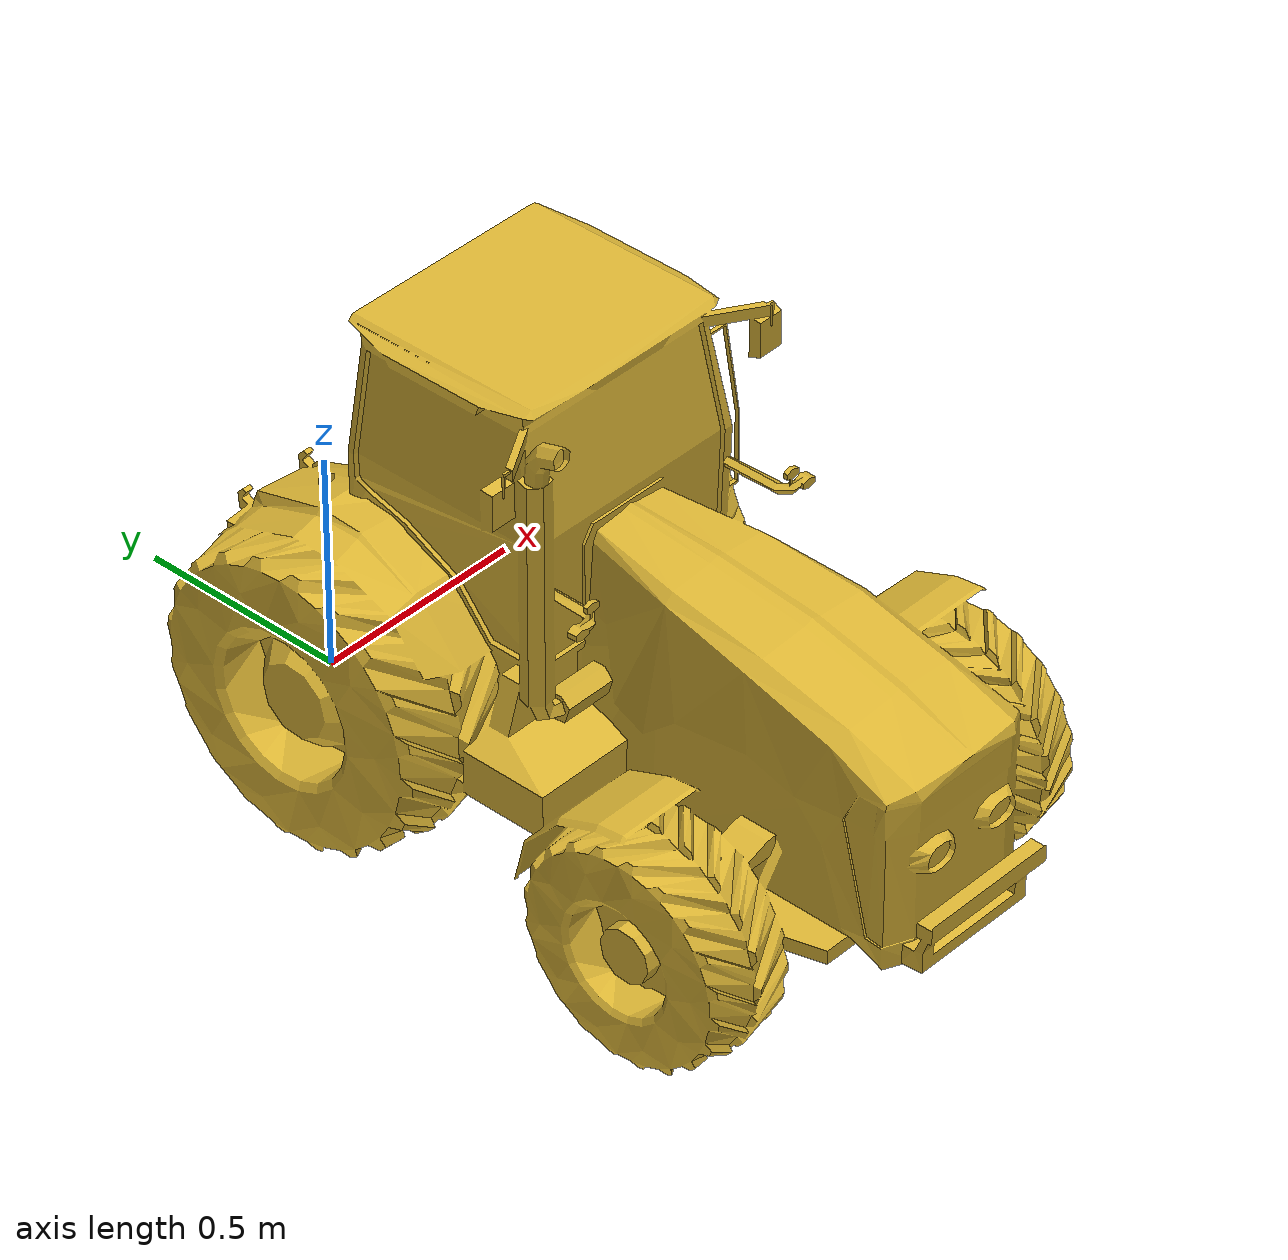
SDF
<?xml version="1.0" ?>
<sdf version="1.5">
  <model name="tractor">

    <pose>0 0 0  0 0 0</pose>

    <static>true</static>
    <link name="link">
      <inertial>
        <mass>50</mass>
        <inertia>
          <ixx>1</ixx>
          <ixy>0</ixy>
          <ixz>0</ixz>
          <iyy>1</iyy>
          <iyz>0</iyz>
          <izz>1</izz>
        </inertia>
      </inertial>

      <collision name="collision">
	    <pose>0 0 0  0 0 0</pose>
        <geometry>
          <mesh>
            <uri>model://tractor/meshes/tractor.stl</uri>
          </mesh>
        </geometry>
      </collision>

      <visual name="visual">
        <geometry>
          <mesh>
            <uri>model://tractor/meshes/tractor.stl</uri>
          </mesh>
        </geometry>
        <material>
           <script>
  <name>Gazebo/Gold</name>
  </script>
        </material>
      </visual>
    </link>
  </model>
</sdf>
